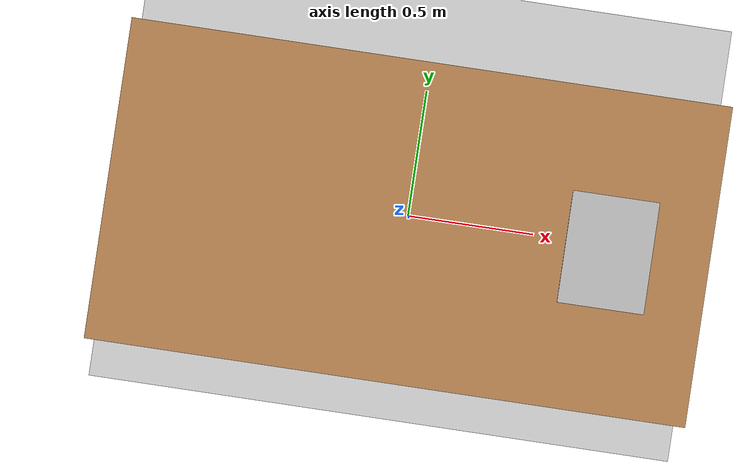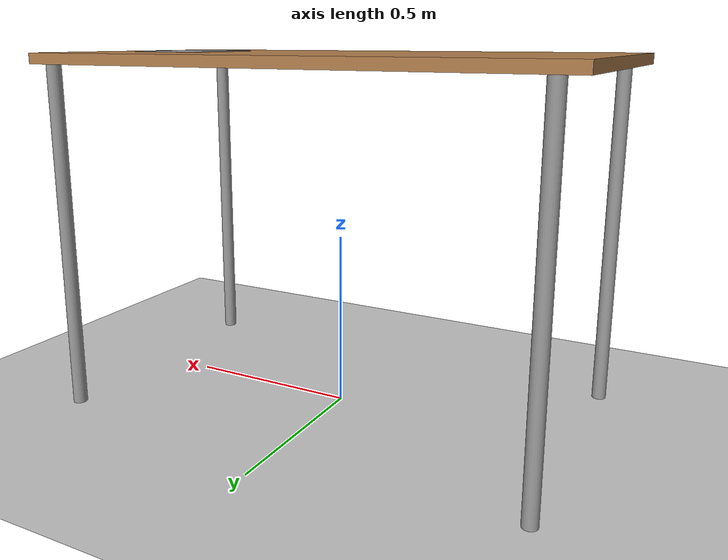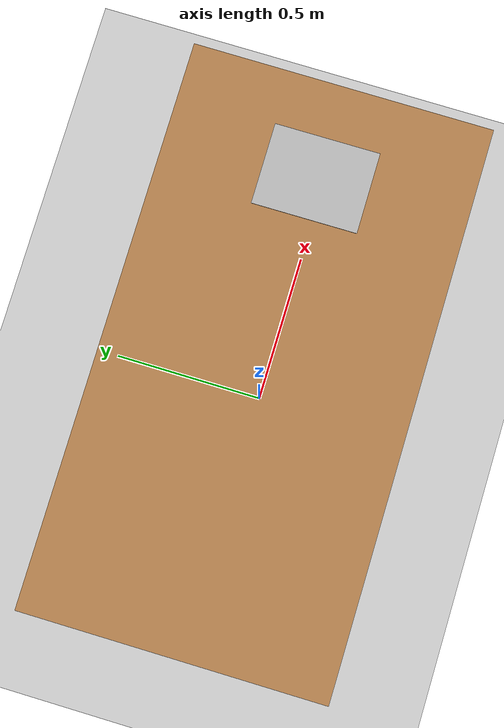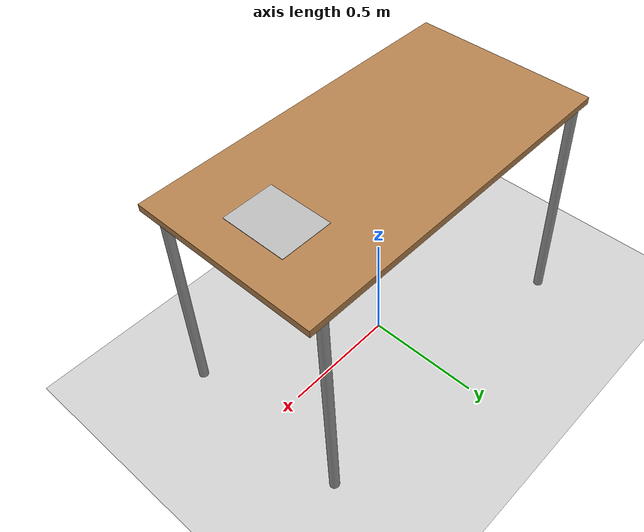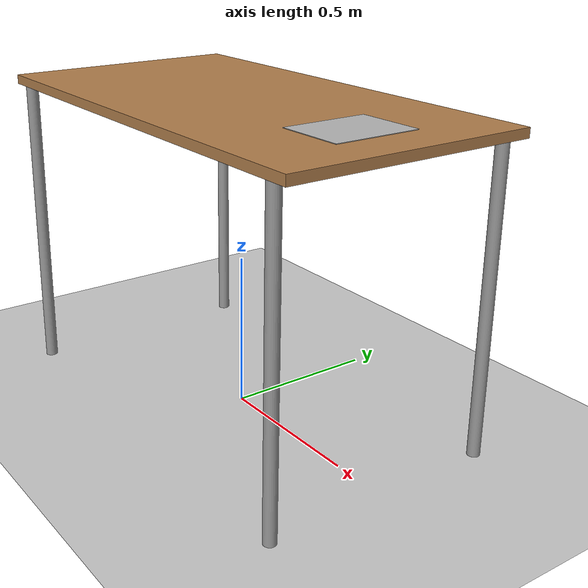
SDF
<sdf version="1.7">
 <world name="default">
  <light name="sun" type="directional">
   <pose>0 0 10 0 -0 0</pose>
   <diffuse>0.8 0.8 0.8 1</diffuse>
   <specular>0.2 0.2 0.2 1</specular>
   <attenuation>
    <range>1000</range>
    <constant>0.9</constant>
    <linear>0.01</linear>
    <quadratic>0.001</quadratic>
   </attenuation>
   <direction>-0.5 0.1 -0.9</direction>
   <spot><inner_angle>0</inner_angle><outer_angle>0</outer_angle><falloff>0</falloff></spot>
  </light>
  <model name="ground_plane">
   <pose>0.5 0 0 0 -0 0</pose>
   <static>1</static>
   <link name="link">
    <collision name="collision">
     <geometry><plane><normal>0 0 1</normal><size>100 100</size></plane></geometry>
     <surface>
      <contact><collide_bitmask>65535</collide_bitmask></contact>
      <friction><ode><mu>100</mu><mu2>50</mu2></ode></friction>
     </surface>
    </collision>
    <visual name="visual">
     <cast_shadows>0</cast_shadows>
     <geometry><plane><normal>0 0 1</normal><size>100 100</size></plane></geometry>
     <material>
      <script><uri>file://media/materials/scripts/gazebo.material</uri><name>Gazebo/Grey</name></script>
     </material>
    </visual>
   </link>
  </model>
  <gravity>0 0 -9.8</gravity>
  <magnetic_field>6e-06 2.3e-05 -4.2e-05</magnetic_field>
  <atmosphere type="adiabatic"/>
  <physics type="ode">
   <max_step_size>0.001</max_step_size>
   <real_time_factor>1</real_time_factor>
   <real_time_update_rate>1000</real_time_update_rate>
  </physics>
  <scene><ambient>0.4 0.4 0.4 1</ambient><background>0.7 0.7 0.7 1</background><shadows>1</shadows></scene>
  <spherical_coordinates>
   <surface_model>EARTH_WGS84</surface_model>
   <latitude_deg>0</latitude_deg>
   <longitude_deg>0</longitude_deg>
   <elevation>0</elevation>
   <heading_deg>0</heading_deg>
  </spherical_coordinates>
  <model name="table">
   <static>1</static>
   <link name="link">
    <collision name="surface">
     <pose>0 0 1 0 -0 0</pose>
     <geometry><box><size>1.5 0.8 0.03</size></box></geometry>
     <surface><friction><ode><mu>0.6</mu><mu2>0.6</mu2></ode></friction></surface>
    </collision>
    <visual name="visual1">
     <pose>0 0 1 0 -0 0</pose>
     <geometry><box><size>1.5 0.8 0.03</size></box></geometry>
     <material>
      <script><uri>file://media/materials/scripts/gazebo.material</uri><name>Gazebo/Wood</name></script>
     </material>
    </visual>
    <collision name="front_left_leg">
     <pose>0.68 0.38 0.5 0 -0 0</pose>
     <geometry><cylinder><radius>0.02</radius><length>1</length></cylinder></geometry>
    </collision>
    <visual name="front_left_leg">
     <pose>0.68 0.38 0.5 0 -0 0</pose>
     <geometry><cylinder><radius>0.02</radius><length>1</length></cylinder></geometry>
     <material>
      <script><uri>file://media/materials/scripts/gazebo.material</uri><name>Gazebo/Grey</name></script>
     </material>
    </visual>
    <collision name="front_right_leg">
     <pose>0.68 -0.38 0.5 0 -0 0</pose>
     <geometry><cylinder><radius>0.02</radius><length>1</length></cylinder></geometry>
    </collision>
    <visual name="front_right_leg">
     <pose>0.68 -0.38 0.5 0 -0 0</pose>
     <geometry><cylinder><radius>0.02</radius><length>1</length></cylinder></geometry>
     <material>
      <script><uri>file://media/materials/scripts/gazebo.material</uri><name>Gazebo/Grey</name></script>
     </material>
    </visual>
    <collision name="back_right_leg">
     <pose>-0.68 -0.38 0.5 0 -0 0</pose>
     <geometry><cylinder><radius>0.02</radius><length>1</length></cylinder></geometry>
    </collision>
    <visual name="back_right_leg">
     <pose>-0.68 -0.38 0.5 0 -0 0</pose>
     <geometry><cylinder><radius>0.02</radius><length>1</length></cylinder></geometry>
     <material>
      <script><uri>file://media/materials/scripts/gazebo.material</uri><name>Gazebo/Grey</name></script>
     </material>
    </visual>
    <collision name="back_left_leg">
     <pose>-0.68 0.38 0.5 0 -0 0</pose>
     <geometry><cylinder><radius>0.02</radius><length>1</length></cylinder></geometry>
    </collision>
    <visual name="back_left_leg">
     <pose>-0.68 0.38 0.5 0 -0 0</pose>
     <geometry><cylinder><radius>0.02</radius><length>1</length></cylinder></geometry>
     <material>
      <script><uri>file://media/materials/scripts/gazebo.material</uri><name>Gazebo/Grey</name></script>
     </material>
    </visual>
   </link>
  </model>
  <model name="aruco">
   <static>0</static>
   <link name="link">
    <inertial>
     <mass>0.01</mass>
     <inertia><ixx>1e-06</ixx><iyy>1e-06</iyy><izz>1e-06</izz><ixy>0</ixy><ixz>0</ixz><iyz>0</iyz></inertia>
    </inertial>
    <collision name="collision"><geometry><box><size>0.216 0.279 0.002</size></box></geometry></collision>
    <visual name="visual">
     <geometry><box><size>0.216 0.279 0.002</size></box></geometry>
     <material>
      <script>
       <uri>model://aruco/materials/scripts</uri>
       <uri>model://aruco/materials/textures</uri>
       <name>aruco/texture</name>
      </script>
     </material>
    </visual>
   </link>
   <pose>0.498813 -0.000186 1.016 -2.9e-05 -4.7e-05 0.002879</pose>
  </model>
 </world>
</sdf>
